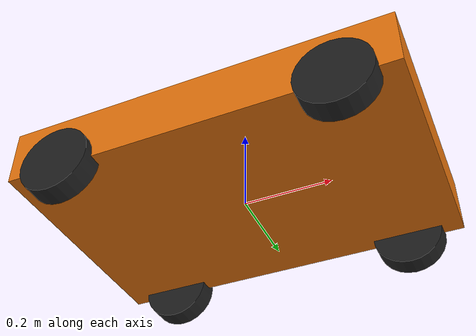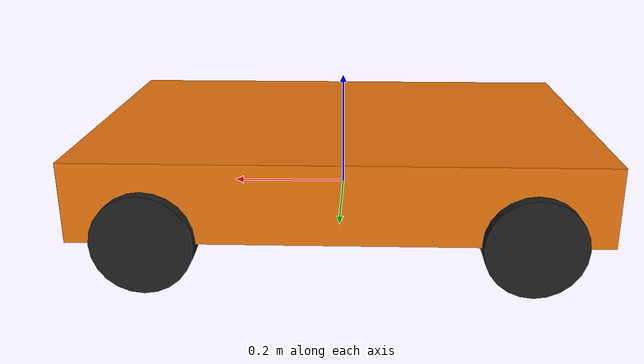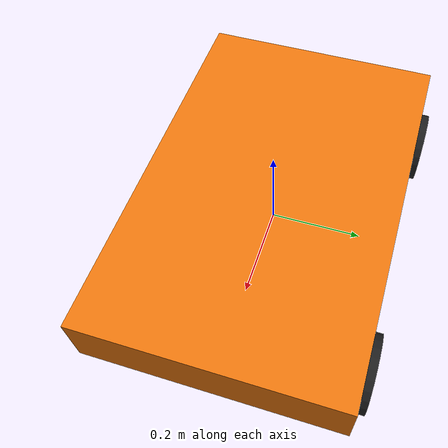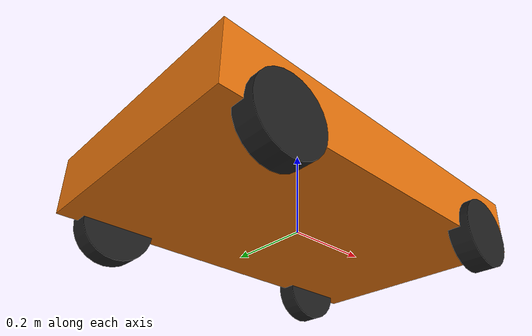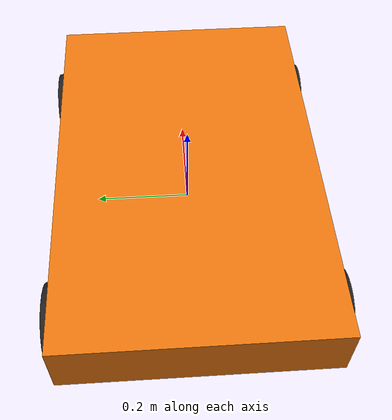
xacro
<?xml version="1.0"?>

<robot name="r2d2" xmlns:xacro="http://www.ros.org/wiki/xacro">

    <link name="robot_base" >
        <visual>
            <origin xyz="0 0 0.06" rpy="0 0 0"/>
            <geometry>
                <box size="0.85 0.55 0.13" />
            </geometry>
            <material name="body_orange">
                <color rgba="0.9 0.45 0.05 1.0"/>
            </material>
        </visual>
        <!-- Collision matches the body so the robot rests on its wheels; an
             oversized box lifted the wheels off the ground (no traction). -->
        <collision>
            <origin xyz="0 0 0.06" rpy="0 0 0"/>
             <geometry>
                <box size="0.85 0.55 0.13" />
            </geometry>
        </collision>
        <!-- Inertia for a 13 kg 0.85x0.55x0.13 box; COM lowered to z=0.04 to resist tipping. -->
        <inertial>
            <origin xyz="0 0 0.04" rpy="0 0 0"/>
            <mass value="13.0"/>
            <inertia ixx="0.3460" ixy="0" ixz="0"
                     iyy="0.8010" iyz="0"
                     izz="1.1104"/>
        </inertial>
    </link>

    <link name="left_wheel1">
        <visual>
            <geometry>
                <cylinder radius="0.08" length="0.05"/>
            </geometry>
            <material name="wheel_black">
                <color rgba="0.12 0.12 0.12 1.0"/>
            </material>
        </visual>
        <collision>
             <geometry>
                <cylinder radius="0.08" length="0.05"/>
            </geometry>
        </collision>
        <inertial>
            <mass value="0.3"/>
            <inertia ixx="0.0005425" ixy="0" ixz="0"
                     iyy="0.0005425" iyz="0"
                     izz="0.00096"/>
        </inertial>
    </link>

    <joint name="left_wheel1_joint" type="continuous">
        <parent link="robot_base"/>
        <child link="left_wheel1"/>
        <origin xyz="-0.3 0.27 0" rpy="-1.5707 0 0"/>
        <axis xyz="0 0 1"/>
    </joint>

    <link name="left_wheel2">
        <visual>
            <geometry>
                <cylinder radius="0.08" length="0.05"/>
            </geometry>
            <material name="wheel_black">
                <color rgba="0.12 0.12 0.12 1.0"/>
            </material>
        </visual>
        <collision>
             <geometry>
                <cylinder radius="0.08" length="0.05"/>
            </geometry>
        </collision>
        <inertial>
            <mass value="0.3"/>
            <inertia ixx="0.0005425" ixy="0" ixz="0"
                     iyy="0.0005425" iyz="0"
                     izz="0.00096"/>
        </inertial>
    </link>

    <joint name="left_wheel2_joint" type="continuous">
        <parent link="robot_base"/>
        <child link="left_wheel2"/>
        <origin xyz="0.3 0.27 0" rpy="-1.5707 0 0"/>
        <axis xyz="0 0 1"/>
    </joint>

    <link name="right_wheel1">
        <visual>
            <geometry>
                <cylinder radius="0.08" length="0.05"/>
            </geometry>
            <material name="wheel_black">
                <color rgba="0.12 0.12 0.12 1.0"/>
            </material>
        </visual>
        <collision>
             <geometry>
                <cylinder radius="0.08" length="0.05"/>
            </geometry>
        </collision>
        <inertial>
            <mass value="0.3"/>
            <inertia ixx="0.0005425" ixy="0" ixz="0"
                     iyy="0.0005425" iyz="0"
                     izz="0.00096"/>
        </inertial>
    </link>

    <joint name="right_wheel1_joint" type="continuous">
        <parent link="robot_base"/>
        <child link="right_wheel1"/>
        <origin xyz="-0.3 -0.27 0" rpy="-1.5707 0 0"/>
        <axis xyz="0 0 1"/>
    </joint>

    <link name="right_wheel2">
        <visual>
            <geometry>
                <cylinder radius="0.08" length="0.05"/>
            </geometry>
            <material name="wheel_black">
                <color rgba="0.12 0.12 0.12 1.0"/>
            </material>
        </visual>
        <collision>
             <geometry>
                <cylinder radius="0.08" length="0.05"/>
            </geometry>
        </collision>
        <inertial>
            <mass value="0.3"/>
            <inertia ixx="0.0005425" ixy="0" ixz="0"
                     iyy="0.0005425" iyz="0"
                     izz="0.00096"/>
        </inertial>
    </link>

    <joint name="right_wheel2_joint" type="continuous">
        <parent link="robot_base"/>
        <child link="right_wheel2"/>
        <origin xyz="0.3 -0.27 0" rpy="-1.5707 0 0"/>
        <axis xyz="0 0 1"/>
    </joint>

    <gazebo reference="left_wheel1"><mu1>1.0</mu1><mu2>0.7</mu2><fdir1>1 0 0</fdir1><material>Gazebo/Black</material></gazebo>
    <gazebo reference="left_wheel2"><mu1>1.0</mu1><mu2>0.7</mu2><fdir1>1 0 0</fdir1><material>Gazebo/Black</material></gazebo>
    <gazebo reference="right_wheel1"><mu1>1.0</mu1><mu2>0.7</mu2><fdir1>1 0 0</fdir1><material>Gazebo/Black</material></gazebo>
    <gazebo reference="right_wheel2"><mu1>1.0</mu1><mu2>0.7</mu2><fdir1>1 0 0</fdir1><material>Gazebo/Black</material></gazebo>

    <gazebo reference="robot_base"><material>Gazebo/Orange</material></gazebo>

    <!-- Differential drive: publishes /odom + odom->robot_base TF, subscribes /cmd_vel. -->
    <gazebo>
        <plugin name="diff_drive" filename="libgazebo_ros_diff_drive.so">
            <ros>
                <namespace>/</namespace>
            </ros>

            <num_wheel_pairs>2</num_wheel_pairs>

            <!-- pair 1 -->
            <left_joint>left_wheel1_joint</left_joint>
            <right_joint>right_wheel1_joint</right_joint>
            <!-- pair 2 -->
            <left_joint>left_wheel2_joint</left_joint>
            <right_joint>right_wheel2_joint</right_joint>

            <wheel_separation>0.54</wheel_separation>
            <wheel_separation>0.54</wheel_separation>
            <wheel_diameter>0.16</wheel_diameter>
            <wheel_diameter>0.16</wheel_diameter>

            <max_wheel_torque>20.0</max_wheel_torque>
            <max_wheel_acceleration>1.0</max_wheel_acceleration>

            <command_topic>cmd_vel</command_topic>
            <odometry_topic>odom</odometry_topic>
            <odometry_frame>odom</odometry_frame>
            <robot_base_frame>robot_base</robot_base_frame>

            <publish_odom>true</publish_odom>
            <!-- odom->robot_base from wheel odometry only; an EKF/IMU fusion here
                 caused a yaw-dependent scan shift during turns. SLAM's map->odom
                 absorbs the drift. -->
            <publish_odom_tf>true</publish_odom_tf>
            <publish_wheel_tf>true</publish_wheel_tf>
        </plugin>
    </gazebo>

    <gazebo>
        <plugin name="wheel_joint_states" filename="libgazebo_ros_joint_state_publisher.so">
            <ros><namespace>/</namespace></ros>
            <update_rate>30</update_rate>
            <joint_name>left_wheel1_joint</joint_name>
            <joint_name>left_wheel2_joint</joint_name>
            <joint_name>right_wheel1_joint</joint_name>
            <joint_name>right_wheel2_joint</joint_name>
        </plugin>
    </gazebo>

</robot>
